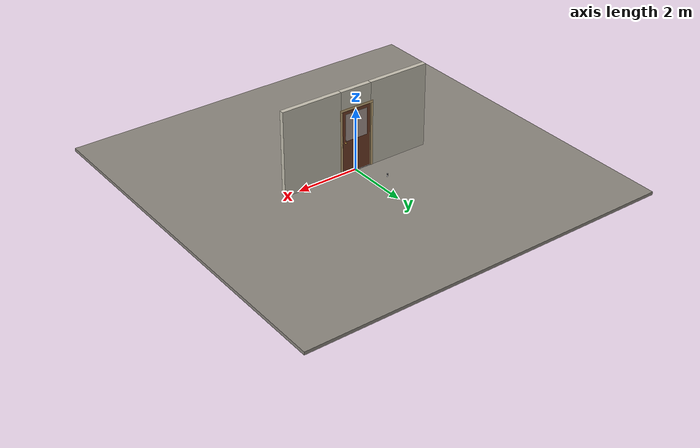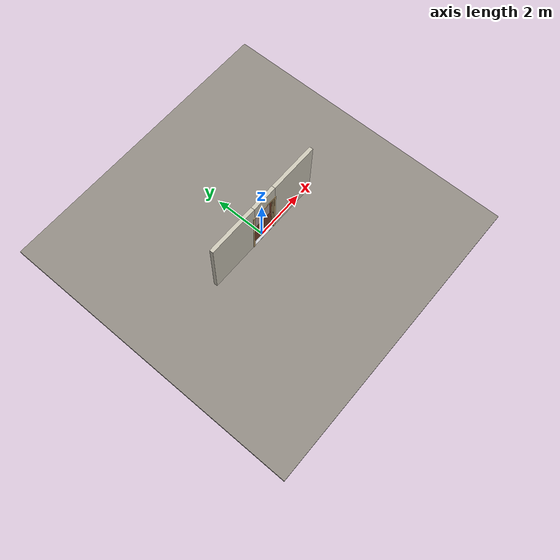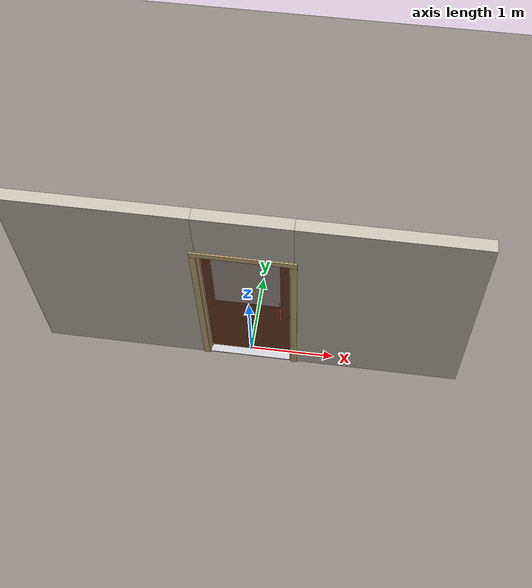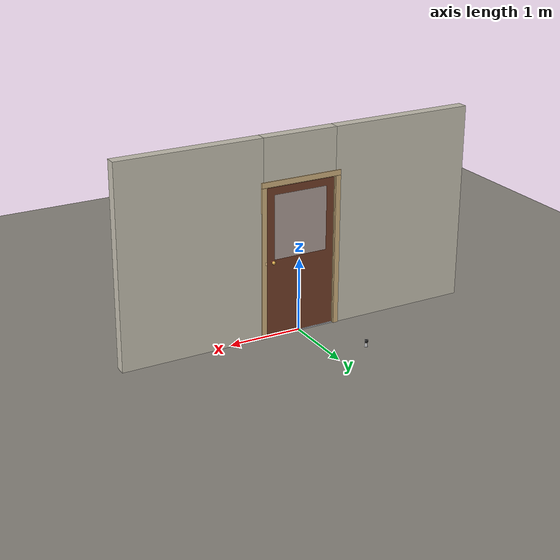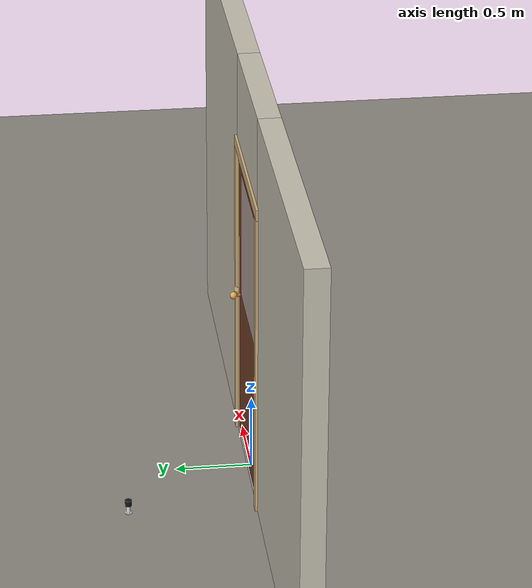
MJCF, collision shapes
<?xml version="1.0" ?>
<mujoco model="db0836_swing_single_full">
  <compiler angle="radian" meshdir="../../hardware" texturedir="../../textures" autolimits="true" inertiafromgeom="false"/>
  <option timestep="0.002" integrator="implicitfast" cone="elliptic" impratio="10" noslip_iterations="3">
    <flag multiccd="enable"/>
  </option>
  <size memory="16M"/>
  <default>
    <geom condim="4" solref="0.005 1" solimp="0.95 0.99 0.001"/>
    <joint solreflimit="0.005 1" solimplimit="0.95 0.99 0.001"/>
    <tendon solreflimit="0.005 1"/>
    <equality solref="0.002 1"/>
  </default>
  <visual>
    <headlight ambient="0.4 0.4 0.4" diffuse="0.7 0.7 0.7" specular="0.2 0.2 0.2"/>
    <quality shadowsize="4096"/>
    <map znear="0.01" zfar="60"/>
  </visual>
  <asset>
    <mesh name="handleset_beb5526ad2" file="handleset_beb5526ad2.obj"/>
    <mesh name="hinge_2af0f4d6ca" file="hinge_2af0f4d6ca.obj"/>
    <mesh name="hinge_jamb_c0c0a62ada" file="hinge_jamb_c0c0a62ada.obj"/>
    <mesh name="house_numbers_ad0a8e8be0" file="house_numbers_ad0a8e8be0.obj"/>
    <mesh name="knob_d1888f6f03" file="knob_d1888f6f03.obj"/>
    <material name="mat_floor" rgba="0.55 0.53 0.5 1" specular="0.2" shininess="0.15" reflectance="0"/>
    <material name="mat_wall" rgba="0.78 0.76 0.7 1" specular="0.2" shininess="0.1" reflectance="0"/>
    <material name="mat_leaf" rgba="0.45 0.24 0.15 1" specular="0.2" shininess="0.55" reflectance="0"/>
    <material name="mat_glass" rgba="0.9 0.93 0.95 0.6" specular="0.2" shininess="0.5" reflectance="0.1"/>
    <material name="mat_hinge" rgba="0.65 0.66 0.68 1" specular="0.74" shininess="0.5" reflectance="0.36"/>
    <material name="mat_op_bronze" rgba="0.3 0.22 0.15 1" specular="0.74" shininess="0.5" reflectance="0.36"/>
    <material name="mat_op_brass" rgba="0.85 0.66 0.3 1" specular="0.8" shininess="0.75" reflectance="0.4"/>
    <material name="mat_trim" rgba="0.85 0.66 0.3 1" specular="0.8" shininess="0.75" reflectance="0.4"/>
    <material name="mat_bolt" rgba="0.85 0.66 0.3 1" specular="0.8" shininess="0.75" reflectance="0.4"/>
    <material name="mat_frame" rgba="0.82 0.7 0.5 1" specular="0.2" shininess="0.45" reflectance="0"/>
    <material name="mat_seal" rgba="0.1 0.1 0.1 1" specular="0.2" shininess="0.1" reflectance="0"/>
    <material name="mat_threshold" rgba="0.8 0.81 0.83 1" specular="0.8" shininess="0.6" reflectance="0.4"/>
    <material name="mat_numbers" rgba="0.05 0.05 0.05 1" specular="0.38" shininess="0.3" reflectance="0.12"/>
    <material name="mat_bumper_stop" rgba="0.08 0.08 0.08 1" specular="0.2" shininess="0.1" reflectance="0"/>
    <material name="mat_stop_base" rgba="0.9 0.9 0.92 1" specular="0.8" shininess="0.9" reflectance="0.4"/>
    <texture name="skybox" type="skybox" builtin="gradient" rgb1="0.6 0.7 0.85" rgb2="0.9 0.92 0.95" width="256" height="256"/>
  </asset>
  <worldbody>
    <light name="sun" pos="1.5 -2.5 4" dir="-0.3 0.5 -0.8" directional="true" diffuse="0.8 0.8 0.8" specular="0.3 0.3 0.3" castshadow="true"/>
    <light name="fill" pos="-1.5 2.5 3" dir="0.3 -0.5 -0.7" directional="true" diffuse="0.35 0.35 0.4" castshadow="false"/>
    <camera name="robot_view" pos="0 -2.585687 1.734312" xyaxes="1 0 0 0 0.26963 0.962964" fovy="52"/>
    <camera name="far_view" pos="0 2.498687 1.734312" xyaxes="-1 0 0 0 -0.26963 0.962964" fovy="52"/>
    <camera name="iso" pos="1.932062 -2.178937 2.141063" xyaxes="0.741536 0.670913 0 -0.242917 0.268487 0.932151" fovy="46"/>
    <camera name="detail_handle" pos="0.557 -0.882 1.27" xyaxes="0.97561 0.219512 0 -0.070934 0.315262 0.94635" fovy="38"/>
    <geom name="floor" type="box" size="6 6 0.05" pos="0 0 -0.05" material="mat_floor" group="0" contype="1" conaffinity="1" friction="0.8 0.005 0.0001" density="2400"/>
    <geom name="wall_left" type="box" size="0.9975 0.0725 1.35" pos="-1.5025 -0.0435 1.35" material="mat_wall" group="0" contype="1" conaffinity="1" friction="0.6 0.005 0.0001" density="800"/>
    <geom name="wall_right" type="box" size="0.9825 0.0725 1.35" pos="1.5175 -0.0435 1.35" material="mat_wall" group="0" contype="1" conaffinity="1" friction="0.6 0.005 0.0001" density="800"/>
    <geom name="wall_header" type="box" size="0.52 0.0725 0.303" pos="0.015 -0.0435 2.397" material="mat_wall" group="0" contype="1" conaffinity="1" friction="0.6 0.005 0.0001" density="800"/>
    <geom name="hinge_0_jamb" type="mesh" mesh="hinge_jamb_c0c0a62ada" pos="-0.483 0.029 0.267" quat="0 1 0 0" material="mat_hinge" group="1" contype="0" conaffinity="0" density="7850"/>
    <geom name="hinge_1_jamb" type="mesh" mesh="hinge_jamb_c0c0a62ada" pos="-0.483 0.029 1.029" quat="0 1 0 0" material="mat_hinge" group="1" contype="0" conaffinity="0" density="7850"/>
    <geom name="hinge_2_jamb" type="mesh" mesh="hinge_jamb_c0c0a62ada" pos="-0.483 0.029 1.861" quat="0 1 0 0" material="mat_hinge" group="1" contype="0" conaffinity="0" density="7850"/>
    <geom name="jamb_hinge" type="box" size="0.0095 0.0725 1.0225" pos="-0.4955 -0.0435 1.0225" material="mat_frame" group="0" contype="1" conaffinity="1" friction="0.6 0.005 0.0001" density="400"/>
    <geom name="strike_1050_wall_n" type="box" size="0.0245 0.05325 0.0183" pos="0.5105 -0.06275 1.05" material="mat_frame" group="0" contype="1" conaffinity="1" friction="0.6 0.005 0.0001" density="400"/>
    <geom name="strike_1050_wall_p" type="box" size="0.0245 0.008 0.0183" pos="0.5105 0.0175 1.05" material="mat_frame" group="0" contype="1" conaffinity="1" friction="0.6 0.005 0.0001" density="400"/>
    <geom name="strike_1050_ramp" type="box" size="0.0245 0.018028 0.0183" pos="0.516385 0.02691 1.05" quat="0.957092 0 0 -0.289784" material="mat_frame" group="0" contype="1" conaffinity="1" friction="0.12 0.005 0.0001" density="400"/>
    <geom name="strike_1050_back" type="box" size="0.013 0.0095 0.0183" pos="0.522 0 1.05" material="mat_frame" group="0" contype="1" conaffinity="1" friction="0.6 0.005 0.0001" density="400"/>
    <geom name="jamb_strike_0" type="box" size="0.0245 0.0725 0.51585" pos="0.5105 -0.0435 0.51585" material="mat_frame" group="0" contype="1" conaffinity="1" friction="0.6 0.005 0.0001" density="400"/>
    <geom name="jamb_strike_1" type="box" size="0.0245 0.0725 0.48835" pos="0.5105 -0.0435 1.55665" material="mat_frame" group="0" contype="1" conaffinity="1" friction="0.6 0.005 0.0001" density="400"/>
    <geom name="jamb_head" type="box" size="0.52 0.0725 0.0095" pos="0.015 -0.0435 2.0545" material="mat_frame" group="0" contype="1" conaffinity="1" friction="0.6 0.005 0.0001" density="400"/>
    <geom name="head_stud" type="box" size="0.52 0.0725 0.015" pos="0.015 -0.0435 2.079" material="mat_wall" group="0" contype="1" conaffinity="1" friction="0.6 0.005 0.0001" density="500"/>
    <geom name="stop_hinge" type="box" size="0.0055 0.016 1.0225" pos="-0.4805 -0.0385 1.0225" material="mat_frame" group="0" contype="1" conaffinity="1" friction="0.6 0.005 0.0001" density="400"/>
    <geom name="stop_strike" type="box" size="0.0055 0.016 1.0225" pos="0.4805 -0.0385 1.0225" material="mat_frame" group="0" contype="1" conaffinity="1" friction="0.6 0.005 0.0001" density="400"/>
    <geom name="stop_head" type="box" size="0.486 0.016 0.0055" pos="0 -0.0385 2.0395" material="mat_frame" group="0" contype="1" conaffinity="1" friction="0.6 0.005 0.0001" density="400"/>
    <geom name="seal_hinge" type="box" size="0.004 0.003 1.0225" pos="-0.483 -0.025 1.0225" material="mat_seal" group="1" contype="0" conaffinity="0" density="1100"/>
    <geom name="seal_strike" type="box" size="0.004 0.003 1.0225" pos="0.483 -0.025 1.0225" material="mat_seal" group="1" contype="0" conaffinity="0" density="1100"/>
    <geom name="seal_head" type="box" size="0.466 0.003 0.008" pos="0 -0.025 2.033" material="mat_seal" group="1" contype="0" conaffinity="0" density="1100"/>
    <geom name="casing_l_n" type="box" size="0.035 0.008 1.032" pos="-0.535 -0.124 1.0225" material="mat_frame" group="2" contype="0" conaffinity="0" density="400"/>
    <geom name="casing_r_n" type="box" size="0.035 0.008 1.032" pos="0.535 -0.124 1.0225" material="mat_frame" group="2" contype="0" conaffinity="0" density="400"/>
    <geom name="casing_h_n" type="box" size="0.57 0.008 0.035" pos="0 -0.124 2.094" material="mat_frame" group="2" contype="0" conaffinity="0" density="400"/>
    <geom name="casing_l_p" type="box" size="0.035 0.008 1.032" pos="-0.535 0.037 1.0225" material="mat_frame" group="2" contype="0" conaffinity="0" density="400"/>
    <geom name="casing_r_p" type="box" size="0.035 0.008 1.032" pos="0.535 0.037 1.0225" material="mat_frame" group="2" contype="0" conaffinity="0" density="400"/>
    <geom name="casing_h_p" type="box" size="0.57 0.008 0.035" pos="0 0.037 2.094" material="mat_frame" group="2" contype="0" conaffinity="0" density="400"/>
    <geom name="threshold" type="box" size="0.505 0.0725 0.0065" pos="0 -0.0435 0.0065" material="mat_threshold" group="0" contype="1" conaffinity="1" friction="0.5 0.005 0.0001" density="2700"/>
    <geom name="door_stop_base" type="cylinder" size="0.022 0.003" pos="-0.499 0.84925 0.003" material="mat_stop_base" group="0" contype="1" conaffinity="1" friction="0.6 0.005 0.0001" density="7850"/>
    <geom name="door_stop_post" type="cylinder" size="0.012 0.0255" pos="-0.499 0.84925 0.0315" material="mat_stop_base" group="0" contype="1" conaffinity="1" friction="0.6 0.005 0.0001" density="7850"/>
    <geom name="door_stop_bumper" type="cylinder" size="0.022 0.02" pos="-0.499 0.84925 0.077" material="mat_bumper_stop" group="0" contype="1" conaffinity="1" friction="0.6 0.005 0.0001" density="1100"/>
    <site name="approach_point" pos="0 -1.5 0" quat="1 0 0 0" size="0.05" rgba="0.2 0.9 0.2 0.5" group="4"/>
    <site name="goal_point" pos="0 1.5 0" quat="1 0 0 0" size="0.05" rgba="0.2 0.9 0.2 0.5" group="4"/>
    <site name="door_plane_center" pos="0 0 1.0225" quat="1 0 0 0" size="0.02" rgba="0.2 0.9 0.2 0.5" group="4"/>
    <body name="leaf" pos="-0.486 0 0">
      <inertial pos="0.489993 -0.001283 1.030639" mass="45.487204" quat="0.501369 0.497506 -0.502471 0.498637" diaginertia="3.707923092 15.168771297 18.85434191"/>
      <joint name="leaf_hinge" type="hinge" axis="0 0 1" pos="0.003 0.029 0" limited="true" range="0 1.570796" solreflimit="0.02 1" damping="0.368237" frictionloss="8.403622" armature="0.02"/>
      <geom name="leaf_slab" type="box" size="0.4825 0.022 1.012" pos="0.4855 0 1.029" material="mat_leaf" group="0" contype="1" conaffinity="1" friction="0.35 0.005 0.0001" density="1"/>
      <geom name="leaf_glass_0" type="box" size="0.37635 0.0228 0.43516" pos="0.4855 0 1.50464" material="mat_glass" group="1" contype="0" conaffinity="0" density="1"/>
      <geom name="hinge_0" type="mesh" mesh="hinge_2af0f4d6ca" pos="0.003 0.029 0.267" quat="0 1 0 0" material="mat_hinge" group="1" contype="0" conaffinity="0" density="7850"/>
      <geom name="hinge_1" type="mesh" mesh="hinge_2af0f4d6ca" pos="0.003 0.029 1.029" quat="0 1 0 0" material="mat_hinge" group="1" contype="0" conaffinity="0" density="7850"/>
      <geom name="hinge_2" type="mesh" mesh="hinge_2af0f4d6ca" pos="0.003 0.029 1.861" quat="0 1 0 0" material="mat_hinge" group="1" contype="0" conaffinity="0" density="7850"/>
      <geom name="leaf_handleset_n" type="mesh" mesh="handleset_beb5526ad2" pos="0.863 -0.022 0.99" quat="0.707107 0.707107 0 0" material="mat_op_bronze" group="1" contype="0" conaffinity="0" density="3000"/>
      <geom name="leaf_handleset_col_n" type="capsule" size="0.011 0.09" pos="0.863 -0.082 0.99" material="mat_op_bronze" group="3" contype="1" conaffinity="1" rgba="0.8 0.3 0.3 0.25" friction="0.7 0.01 0.0001" density="3000"/>
      <geom name="leaf_latch_bolt_faceplate" type="box" size="0.0006 0.014 0.0283" pos="0.9674 0 1.05" material="mat_bolt" group="1" contype="0" conaffinity="0" density="8500"/>
      <geom name="house_numbers" type="mesh" mesh="house_numbers_ad0a8e8be0" pos="0.4855 -0.022 1.691" quat="0.707107 0.707107 0 0" material="mat_numbers" group="2" contype="0" conaffinity="0" density="1000"/>
      <site name="leaf_handleset_grip_n" pos="0.863 -0.082 0.99" quat="1 0 0 0" size="0.012" rgba="0.2 0.9 0.2 0.5" group="4"/>
      <site name="leaf_edge_mid" pos="0.968 0 1.012" quat="1 0 0 0" size="0.02" rgba="0.2 0.9 0.2 0.5" group="4"/>
      <body name="leaf_handle" pos="0.898 0 1.05">
        <inertial pos="0 0.052948 0" mass="0.60261" quat="0.5 0.5 0.5 0.5" diaginertia="0.000156736 0.000451151 0.000451151"/>
        <joint name="leaf_handle_hinge" type="hinge" axis="0 -1 0" limited="true" range="0 0.87" damping="0.142525" frictionloss="0.038" stiffness="0.5" springref="-0.5" armature="0.01"/>
        <geom name="leaf_handle_spindle" type="cylinder" size="0.006 0.03" pos="0 0 0" quat="0.707107 -0.707107 0 0" material="mat_op_brass" group="1" contype="0" conaffinity="0" density="7850"/>
        <geom name="leaf_handle_knob_p" type="mesh" mesh="knob_d1888f6f03" pos="0 0.022 0" quat="-0.707107 0.707107 0 0" material="mat_op_brass" group="1" contype="0" conaffinity="0" density="3000"/>
        <geom name="leaf_handle_knob_col_p" type="sphere" size="0.0243" pos="0 0.0685 0" material="mat_op_brass" group="0" contype="1" conaffinity="1" friction="0.9 0.01 0.0001" density="3000"/>
        <geom name="leaf_handle_knob_neck_p" type="cylinder" size="0.011 0.012" pos="0 0.034 0" quat="0.707107 -0.707107 0 0" material="mat_op_brass" group="3" contype="1" conaffinity="1" rgba="0.8 0.3 0.3 0.25" friction="0.6 0.005 0.0001" density="3000"/>
        <site name="leaf_handle_grip_p" pos="0 0.0685 0" quat="1 0 0 0" size="0.012" rgba="0.2 0.9 0.2 0.5" group="4"/>
      </body>
      <body name="leaf_thumbpiece" pos="0.863 -0.04 1.162">
        <inertial pos="0 0.004 0" mass="0.05184" quat="-0.5 0.5 0.5 0.5" diaginertia="0.000006981 0.000007488 0.000009124"/>
        <joint name="leaf_thumbpiece_hinge" type="hinge" axis="-1 0 0" pos="0 0 0.02" limited="true" range="0 0.35" damping="0.219407" frictionloss="0.058" stiffness="1.2" springref="-0.416667" armature="0.01"/>
        <geom name="leaf_thumbpiece_geom" type="box" size="0.018 0.004 0.02" pos="0 0 0" material="mat_op_bronze" group="0" contype="1" conaffinity="1" friction="0.6 0.005 0.0001" density="3000"/>
        <geom name="leaf_thumbpiece_boss" type="box" size="0.01 0.012 0.006" pos="0 0.012 0" material="mat_op_bronze" group="1" contype="0" conaffinity="0" density="3000"/>
        <site name="leaf_thumb_push" pos="0 -0.005 0.01" quat="1 0 0 0" size="0.01" rgba="0.2 0.9 0.2 0.5" group="4"/>
      </body>
      <body name="leaf_latch_bolt" pos="0.968 0 1.05">
        <inertial pos="-0.0055 0 0" mass="0.074627" quat="0.92388 -0.382683 0 0" diaginertia="0.000002271 0.000013255 0.000013255"/>
        <joint name="leaf_latch_bolt_slide" type="slide" axis="-1 0 0" limited="true" range="0 0.019" damping="2" frictionloss="0.3" stiffness="600" springref="-0.01" armature="0.1"/>
        <geom name="leaf_latch_bolt_capsule" type="capsule" size="0.008 0.0165" pos="-0.0055 0 0" quat="0.707107 0 0.707107 0" material="mat_bolt" group="0" contype="1" conaffinity="1" friction="0.2 0.005 0.0001" density="8500"/>
      </body>
    </body>
  </worldbody>
  <tendon>
    <fixed name="leaf_thumb_coupling" limited="true" range="0 10">
      <joint joint="leaf_latch_bolt_slide" coef="1"/>
      <joint joint="leaf_thumbpiece_hinge" coef="-0.059375"/>
    </fixed>
    <fixed name="leaf_latch_bolt_coupling" limited="true" range="0 10">
      <joint joint="leaf_latch_bolt_slide" coef="1"/>
      <joint joint="leaf_handle_hinge" coef="-0.023457"/>
    </fixed>
  </tendon>
  <sensor>
    <jointpos name="leaf_hinge_pos" joint="leaf_hinge"/>
    <jointvel name="leaf_hinge_vel" joint="leaf_hinge"/>
    <jointpos name="leaf_handle_hinge_pos" joint="leaf_handle_hinge"/>
    <jointvel name="leaf_handle_hinge_vel" joint="leaf_handle_hinge"/>
    <jointpos name="leaf_thumbpiece_hinge_pos" joint="leaf_thumbpiece_hinge"/>
    <jointvel name="leaf_thumbpiece_hinge_vel" joint="leaf_thumbpiece_hinge"/>
    <jointpos name="leaf_latch_bolt_slide_pos" joint="leaf_latch_bolt_slide"/>
    <jointvel name="leaf_latch_bolt_slide_vel" joint="leaf_latch_bolt_slide"/>
  </sensor>
</mujoco>
